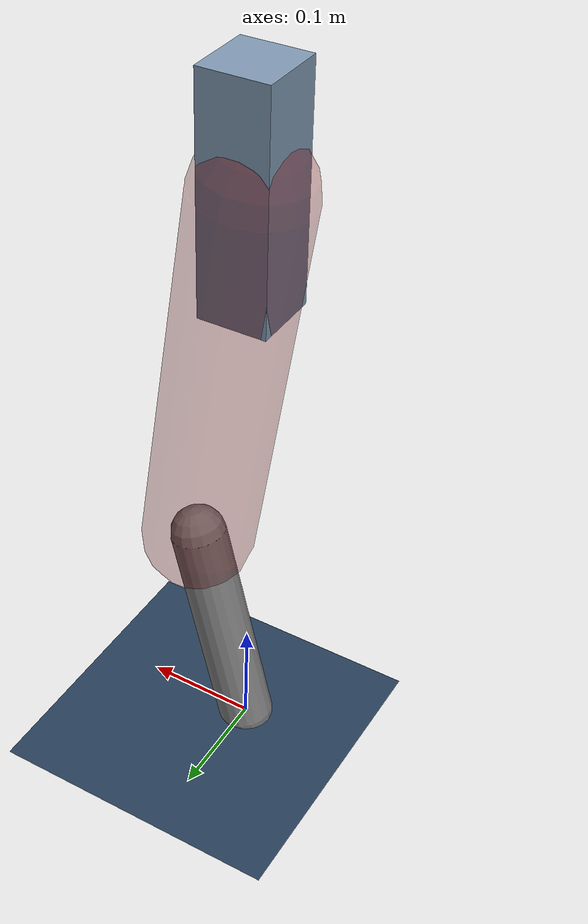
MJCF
<mujoco model="Hopper2D">
	<compiler inertiafromgeom="true" angle="radian" />
	<option timestep="0.001" integrator="implicit" cone="elliptic" solver="Newton" tolerance="1e-10" />

	<default>
		<geom contype="1" conaffinity="1" condim="3" friction="2 0.005 0.0001" solref="0.005 1" />
		<joint limited="true" damping="0.1" />
	</default>

	<asset>
		<texture name="skybox" type="skybox" builtin="gradient" rgb1=".4 .6 .8" rgb2="0 0 0" width="800" height="800" />
		<texture name="grid" type="2d" builtin="checker" rgb1=".1 .2 .3" rgb2=".2 .3 .4" width="300" height="300" mark="edge" markrgb=".2 .3 .4" />
		<material name="ground" texture="grid" texrepeat="1 1" texuniform="true" reflectance="0.1" />
		<material name="leg" rgba="0.5 0.6 0.7 1" />
	</asset>

	<worldbody>

		<geom name="floor" type="plane" size="5 5 0.25" material="ground" />

		<light directional="false" diffuse="0.8 0.8 0.8" specular="0.3 0.3 0.3" pos="0 0 2" dir="0 0 -1" />
		<light mode="targetbodycom" target="base" directional="false" diffuse="0.8 0.8 0.8" specular="0.3 0.3 0.3" pos="0 0 2" dir="0 0 -1" />

		<camera name="fixed" pos="0 -2 1" xyaxes="1 0 0 0 0 1" />
		<camera name="tracking" mode="trackcom" pos="0 -3 1" />

		<body name="root" pos="0 0 0.545313962983655">
			<joint name="slide_x" type="slide" axis="1 0 0" range="-100 100" />
			<joint name="slide_z" type="slide" axis="0 0 1" range="0 10" />

			<body name="base" pos="0 0 0">
				<geom name="torso" type="box" size="0.03 0.03 0.1" mass="2.512" material="leg" />

				<body name="link1" pos="0 0 0" euler="0 1.4257364482029182 0">
					<joint type="hinge" axis="0 -1 0" pos="0 0 0" name="hinge1" limited="true" range="-3.14 3.14" stiffness="0" damping="0.1" />
					<geom name="thigh" type="capsule" fromto="0 0 0 0.34991011493637936 0 0" size="0.05" rgba="0.5 0 0 0.3" mass="1.1264483218218624" />

					<body name="link2" pos="0.34991011493637936 0 0" euler="0 0.3938660476722381 0">
						<joint type="hinge" axis="0 -1 0" pos="0 0 0" name="hinge2" limited="true" range="-3.14 3.14" stiffness="0" damping="0.1" />
						<geom name="shank" type="capsule" fromto="0 0 0 0.20540384804727568 0 0" size="0.025" mass="0.40542307843782055" />

					</body>
				</body>
			</body>
		</body>
	</worldbody>

	<actuator>
		<motor name="torque1" joint="hinge1" ctrlrange="-100.86965223770522 100.86965223770522" ctrllimited="true" gear="1" />
		<motor name="torque2" joint="hinge2" ctrlrange="-119.87929483831417 119.87929483831417" ctrllimited="true" gear="1" />
	</actuator>
</mujoco>
